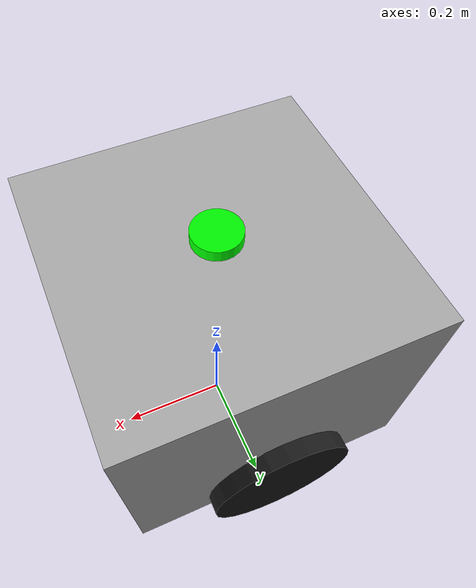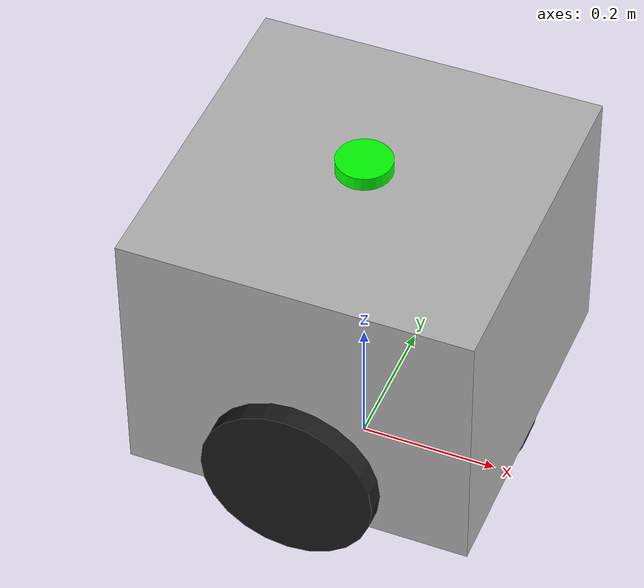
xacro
<?xml version='1.0' ?>
<robot name='shelfino' xmlns:xacro='http://www.ros.org/wiki/xacro'>

  <xacro:property name='PI_2' value='1.5707963267948966'/>
  <xacro:arg name="robot_name" default="X" />

  <!-- Define the macro for the whole shelfino -->
  <xacro:macro name="shelfino" params='robot_name'>

      <xacro:include filename='shelfino_v1/materials.xacro' />

      <xacro:include filename='shelfino_v1/shelfino_body.xacro' />
      <xacro:include filename='shelfino_v1/lidar.xacro' />
      <xacro:include filename='shelfino_v1/wheels.xacro' />

      <xacro:include filename='shelfino_v1/gazebo_classic_controls.xacro' />

  </xacro:macro>

  <!-- Instantiate the model -->
  <xacro:shelfino robot_name="$(arg robot_name)" />
</robot>

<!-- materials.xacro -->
<robot name='shelfino' xmlns:xacro='http://www.ros.org/wiki/xacro'>
  <!--
                  MATERIALS
  -->
  <material name='Black'>
    <color rgba='0.1 0.1 0.1 1.0'/>
  </material>

  <material name='Grey'>
    <color rgba='0.7 0.7 0.7 1.0'/>
  </material>

  <material name='White'>
    <color rgba='1.0 1.0 1.0 1.0'/>
  </material>

  <material name='Red'>
    <color rgba='1.0 0.0 0.0 1.0'/>
  </material>

  <material name='Green'>
    <color rgba='0.0 1.0 0.0 1.0'/>
  </material>

</robot>

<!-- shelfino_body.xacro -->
<robot name='shelfino' xmlns:xacro='http://www.ros.org/wiki/xacro'>

  <link name='${robot_name}/base_link'>
  <!-- This is the main link of reference for the body -->
  </link>

  <link name='${robot_name}/base_footprint'>
  <!-- This is the standard link to which the map is usually associated to -->
  </link>

  <!--
                  SHELFINO'S BODY
  -->
  <xacro:property name='body_width' value='0.5'/>
  <xacro:property name='body_length' value='0.5'/>
  <xacro:property name='body_height' value='0.4'/>
  <xacro:property name='body_offset_x' value='0'/>
  <xacro:property name='body_offset_y' value='0'/>
  <xacro:property name='body_offset_z' value='0.3'/>
  <xacro:property name='caster_radius' value='0.05'/>
  <xacro:property name='caster_width' value='0.05'/>
  <xacro:property name='caster_offset_z' value='0.1'/>
  <xacro:property name='body_weight' value='0.5'/>

  <link name='${robot_name}/chassis_link'>
    <visual name='body_visual'>
      <origin xyz='${body_offset_x} ${body_offset_y} ${body_offset_z}'/>
      <geometry>
        <box size='${body_width} ${body_length} ${body_height}'/>
      </geometry>
      <xacro:if value="${robot_name == 'evader'}">
        <material name='Red' />
      </xacro:if>
      <xacro:if value="${robot_name != 'evader'}">
        <material name='Grey' />
      </xacro:if>
    </visual>

    <visual name='front_caster_visual'>
      <origin xyz='-0.2 0 ${caster_offset_z}' rpy='0 ${PI_2} ${PI_2}'/>
      <geometry>
        <cylinder radius='${caster_radius}' length='${caster_width}'/>
      </geometry>
      <material name='Black' />
    </visual>

    <visual name='back_caster_visual'>
      <origin xyz='0.2 0 ${caster_offset_z}' rpy='0 ${PI_2} ${PI_2}'/>
      <geometry>
        <cylinder radius='${caster_radius}' length='${caster_width}'/>
      </geometry>
      <material name='Black' />
    </visual>

    <collision>
      <origin xyz='${body_offset_x} ${body_offset_y} ${body_offset_z}'/>
      <geometry>
        <box size='${body_width+caster_radius+0.02} ${body_length+0.02} ${body_height+caster_radius*2.0}' />
      </geometry>
    </collision>

    <inertial>
      <mass value='${body_weight}'/>
      <inertia ixx='0.001' ixy='0.0' ixz='0.0'
                iyy='0.001' iyz='0.0'
                izz='0.001' />
    </inertial>
  </link>

  <!--
                  JOINTS
  -->

  <joint name='${robot_name}/base_to_chassis_joint' type='fixed'>
    <parent link='${robot_name}/base_link'/>
    <child link='${robot_name}/chassis_link'/>
    <origin xyz='0 0 0' rpy='0 0 0'/>
  </joint>

  <joint name='${robot_name}/base_to_base_footprint_joint' type='fixed'>
    <parent link='${robot_name}/base_link'/>
    <child link='${robot_name}/base_footprint'/>
    <origin xyz='0 0 0' rpy='0 0 0'/>
  </joint>

  <!--
                  GAZEBO COLORS
  -->

  <gazebo reference="${robot_name}/chassis_link">
    <xacro:if value="${robot_name == 'evader'}">
      <material>Gazebo/Green</material>
    </xacro:if>
    <xacro:if value="${robot_name != 'evader'}">
      <material>Gazebo/Green</material>
    </xacro:if>

    <mu1 value="0.000001"/>
    <mu2 value="0.000001"/>
  </gazebo>

</robot>

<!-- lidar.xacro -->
<robot name='shelfino' xmlns:xacro='http://www.ros.org/wiki/xacro'>
  <!--
                  LIDAR
  -->
  <xacro:property name='laser_radius' value='0.04'/>
  <xacro:property name='laser_height' value='0.02'/>
  <xacro:property name='laser_mass' value='0.1'/>

  <link name='${robot_name}/base_laser'>
    <visual>
      <origin xyz='0 0 ${laser_height/2}' rpy='0 0 0'/>
      <geometry>
        <cylinder radius='${laser_radius}' length='${laser_height}'/>
      </geometry>
      <material name='Green' />
    </visual>
    <inertial>
      <mass value='0.1'/>
      <inertia ixx='0.001' ixy='0.0' ixz='0.0'
                iyy='0.001' iyz='0.0'
                izz='0.001' />
    </inertial>
  </link>

  <!--
                  JOINT
  -->

  <joint name='${robot_name}/lidar2d_joint' type='fixed'>
    <parent link='${robot_name}/chassis_link'/>
    <child link='${robot_name}/base_laser'/>
    <origin xyz='0 0 ${body_height+0.11}' rpy='0 0 0'/>
  </joint>

  <gazebo reference='${robot_name}/base_laser'>
    <material>Gazebo/Green</material>
    <sensor name="laser" type="ray">
      <pose> 0 0 0 0 0 0 </pose>
      <visualize>false</visualize>
      <update_rate>10</update_rate>
      <ray>
        <scan>
          <horizontal>
            <samples>360</samples>
            <min_angle>-3.14</min_angle>
            <max_angle>3.14</max_angle>
          </horizontal>
        </scan>
        <range>
          <min>${body_width/sqrt(2)+body_width*0.1}</min>
          <max>15</max>
        </range>
        <noise>
          <type>gaussian</type>
          <mean>0.0</mean>
          <stddev>0.02</stddev>
        </noise>
      </ray>
      <plugin name="laser_controller" filename="libgazebo_ros_ray_sensor.so">
        <ros>
          <remapping>~/out:=scan</remapping>
        </ros>
        <output_type>sensor_msgs/LaserScan</output_type>
        <frame_name>${robot_name}/base_laser</frame_name>
      </plugin>
    </sensor>
  </gazebo>

</robot>

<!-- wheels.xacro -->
<robot name='shelfino' xmlns:xacro='http://www.ros.org/wiki/xacro'>
  <xacro:property name='wheel_radius' value='0.125'/>
  <xacro:property name='wheel_width' value='0.03'/>

  <xacro:macro name="wheel" params="prefix reflect">

    <!--
                    LINKS
    -->

    <link name="${robot_name}/${prefix}_wheel">
      <visual>
        <geometry>
          <cylinder radius="${wheel_radius}" length="${wheel_width}"/>
        </geometry>
        <material name="Black"/>
      </visual>
      <collision>
        <geometry>
          <cylinder radius="${wheel_radius}" length="${wheel_width+0.005}"/>
        </geometry>
      </collision>
      <inertial>
        <mass value="0.028498940"/>
        <inertia ixx='1.1175580e-05' ixy='-4.2369783e-11' ixz='-5.9381719e-09'
            iyy='1.1192413e-05' iyz='-1.4400107e-11'
            izz='2.0712558e-05' />
      </inertial>
    </link>

    <!--
                    JOINTS
    -->

    <joint name="${robot_name}/${prefix}_wheel_joint" type="continuous">
      <parent link="${robot_name}/chassis_link"/>
      <child link="${robot_name}/${prefix}_wheel"/>
      <origin xyz="0 ${reflect*(body_width/2+0.02)} ${wheel_radius+0.05}" rpy="0 ${pi/2} ${pi/2}"/>
      <axis xyz="0 0 1"/> <!-- specifies the axis around which it should revolve -->
    </joint>

    <!--
                    GAZEBO COLORS
    -->
    <gazebo reference="${robot_name}/${prefix}_wheel">
      <material>Gazebo/Black</material>
      <plugin name='gazebo_ros_joint_state_publisher' filename='libgazebo_ros_joint_state_publisher.so'>
        <update_rate>100</update_rate>
        <ros>
            <remapping>~/out:=joint_states</remapping>
        </ros>
        <joint_name>${prefix}_wheel_joint</joint_name>
      </plugin>
    </gazebo>

  </xacro:macro>

  <!--
                    WHEELS
  -->
  <xacro:wheel prefix="right" reflect="-1" />
  <xacro:wheel prefix="left" reflect="1" />

</robot>
